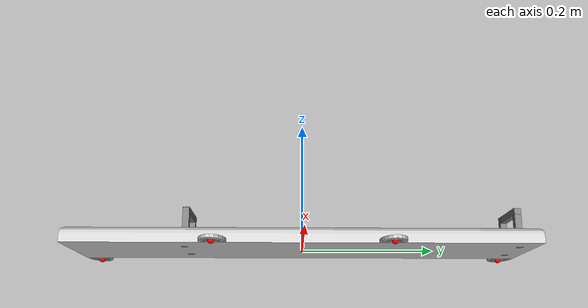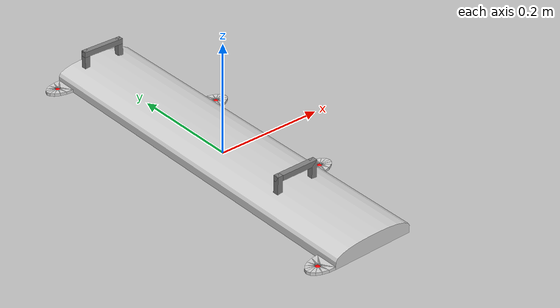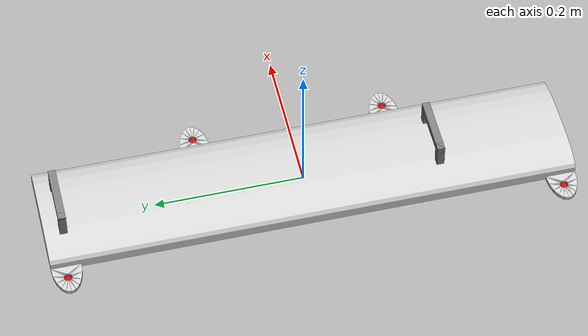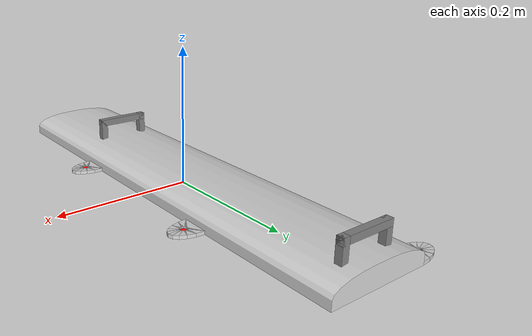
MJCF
<mujoco model="bracket">
    <asset>
        <mesh name="quad_base"           file="quad_base.stl" />
        <mesh name="quad_handle"         file="handle.stl" />
        <mesh name="grommet_11mm_01"     file="../dual_pegs/hole_11_01.stl" />
        <mesh name="grommet_11mm_02"     file="../dual_pegs/hole_11_02.stl" />
        <mesh name="grommet_11mm_03"     file="../dual_pegs/hole_11_03.stl" />
        <mesh name="grommet_11mm_04"     file="../dual_pegs/hole_11_04.stl" />
        <mesh name="grommet_11mm_05"     file="../dual_pegs/hole_11_05.stl" />
        <mesh name="grommet_11mm_06"     file="../dual_pegs/hole_11_06.stl" />
        <mesh name="grommet_11mm_07"     file="../dual_pegs/hole_11_07.stl" />
        <mesh name="grommet_11mm_08"     file="../dual_pegs/hole_11_08.stl" />
        <mesh name="grommet_11mm_09"     file="../dual_pegs/hole_11_09.stl" />
        <mesh name="grommet_11mm_10"     file="../dual_pegs/hole_11_10.stl" />
        <mesh name="grommet_11mm_11"     file="../dual_pegs/hole_11_11.stl" />
        <mesh name="grommet_11mm_12"     file="../dual_pegs/hole_11_12.stl" />
        <mesh name="grommet_11mm_13"     file="../dual_pegs/hole_11_13.stl" />
        <mesh name="grommet_11mm_14"     file="../dual_pegs/hole_11_14.stl" />
        <mesh name="grommet_11mm_15"     file="../dual_pegs/hole_11_15.stl" />
        <mesh name="grommet_11mm_16"     file="../dual_pegs/hole_11_16.stl" />
        <mesh name="grommet_11mm_17"     file="../dual_pegs/hole_11_17.stl" />
        <mesh name="grommet_11mm_18"     file="../dual_pegs/hole_11_18.stl" />
        <mesh name="grommet_11mm_19"     file="../dual_pegs/hole_11_19.stl" />
        <mesh name="grommet_11mm_20"     file="../dual_pegs/hole_11_20.stl" />
        <mesh name="grommet_11mm_21"     file="../dual_pegs/hole_11_21.stl" />
        <mesh name="grommet_11mm_22"     file="../dual_pegs/hole_11_22.stl" />
        <mesh name="grommet_11mm_23"     file="../dual_pegs/hole_11_23.stl" />
        <mesh name="grommet_11mm_24"     file="../dual_pegs/hole_11_24.stl" />
        <mesh name="grommet_11mm_25"     file="../dual_pegs/hole_11_25.stl" />
        <mesh name="grommet_11mm_26"     file="../dual_pegs/hole_11_26.stl" />
        <mesh name="grommet_11mm_27"     file="../dual_pegs/hole_11_27.stl" />
        <mesh name="grommet_11mm_28"     file="../dual_pegs/hole_11_28.stl" />
        <mesh name="grommet_11mm_29"     file="../dual_pegs/hole_11_29.stl" />
        <mesh name="grommet_11mm_30"     file="../dual_pegs/hole_11_30.stl" />
        <mesh name="grommet_11mm_31"     file="../dual_pegs/hole_11_31.stl" />
        <mesh name="grommet_11mm_32"     file="../dual_pegs/hole_11_32.stl" />
        <mesh name="grommet_11mm_33"     file="../dual_pegs/hole_11_33.stl" />

        <material name="silver" specular="1" shininess="0.5" reflectance="1" emission="0.25" rgba="0.82 0.82 0.82 1"/>
        <material name="dark_silver" specular="1" shininess="0.5" reflectance="1" emission="0.25" rgba="0.5 0.5 0.5 1"/>
    </asset>

    <worldbody>
        <body>
            <body name="object">
                <inertial pos="0 0 0" mass="0.1" diaginertia="0.005 0.005 0.005"/>
                <geom name="quad_base" type="mesh" mesh="quad_base" pos="0 0 0"
                      material="silver" conaffinity="1" contype="1" mass="0.025" solimp="0.99 0.99 0.01"
                      solref="0.01 1" condim="4" friction="0.9 0.9 10"
                      group="0"/>

                <site rgba="1 0 0 1" size="0.003" pos="0 0 0" name="center_site"/>

                <!--size="0.04 0.005 0.005" pos="0 -0.175 0.055"-->
                <!--size="0.04 0.005 0.03" pos="0 -0.175 0.03"-->
                <geom name="handle0_a" type="box" material="dark_silver"
                      size="0.04 0.005 0.005" pos="0 -0.175 0.055"
                      conaffinity="1" contype="1" mass="0.025"
                      solimp="0.998 0.998 0.001" solref="0.02 1" density="100" friction="0.95 0.3 0.1" group="0" condim="4"/>
                <site rgba="1 0 0 1" size="0.005" pos="0 -0.175 0.055" name="handle0_site"/>
                <geom name="handle0_b" type="box" material="dark_silver"
                      size="0.005 0.005 0.03" pos="0.035 -0.175 0.03"
                      conaffinity="1" contype="1" mass="0.025"
                      solimp="0.998 0.998 0.001" solref="0.02 1" density="100" friction="0.95 0.3 0.1" group="0" condim="4"/>
                <geom name="handle0_c" type="box" material="dark_silver"
                      size="0.005 0.005 0.03" pos="-0.035 -0.175 0.03"
                      conaffinity="1" contype="1" mass="0.025"
                      solimp="0.998 0.998 0.001" solref="0.02 1" density="100" friction="0.95 0.3 0.1" group="0" condim="4"/>

                <!--size="0.04 0.005 0.005" pos="0 -0.175 0.055"-->
                <!--size="0.04 0.005 0.03" pos="0 0.325 0.03"-->
                <geom name="handle1_a" type="box" material="dark_silver"
                      size="0.04 0.005 0.005" pos="0 0.325 0.055"
                      conaffinity="1" contype="1" mass="0.025"
                      solimp="0.998 0.998 0.001" solref="0.02 1" density="100" friction="0.95 0.3 0.1" group="0" condim="4"/>
                <site rgba="1 0 0 1" size="0.005" pos="0 0.325 0.055" name="handle1_site"/>
                <geom name="handle1_b" type="box" material="dark_silver"
                      size="0.005 0.005 0.03" pos="0.035 0.325 0.03"
                      conaffinity="1" contype="1" mass="0.025"
                      solimp="0.998 0.998 0.001" solref="0.02 1" density="100" friction="0.95 0.3 0.1" group="0" condim="4"/>
                <geom name="handle1_c" type="box" material="dark_silver"
                      size="0.005 0.005 0.03" pos="-0.035 0.325 0.03"
                      conaffinity="1" contype="1" mass="0.025"
                      solimp="0.998 0.998 0.001" solref="0.02 1" density="100" friction="0.95 0.3 0.1" group="0" condim="4"/>

                <body name="handle_11mm_flap_a" pos="0.0 0.13 0.005" quat="0 0 0.707108 0">
                    <geom name="grommet_11mm_01_a" type="mesh" mesh="grommet_11mm_01" pos="0 0 0" material="silver" conaffinity="1" contype="1" mass="0.0001" group="0"/>
                    <geom name="grommet_11mm_02_a" type="mesh" mesh="grommet_11mm_02" pos="0 0 0" material="silver" conaffinity="1" contype="1" mass="0.0001" group="0"/>
                    <geom name="grommet_11mm_03_a" type="mesh" mesh="grommet_11mm_03" pos="0 0 0" material="silver" conaffinity="1" contype="1" mass="0.0001" group="0"/>
                    <geom name="grommet_11mm_04_a" type="mesh" mesh="grommet_11mm_04" pos="0 0 0" material="silver" conaffinity="1" contype="1" mass="0.0001" group="0"/>
                    <geom name="grommet_11mm_05_a" type="mesh" mesh="grommet_11mm_05" pos="0 0 0" material="silver" conaffinity="1" contype="1" mass="0.0001" group="0"/>
                    <geom name="grommet_11mm_06_a" type="mesh" mesh="grommet_11mm_06" pos="0 0 0" material="silver" conaffinity="1" contype="1" mass="0.0001" group="0"/>
                    <geom name="grommet_11mm_07_a" type="mesh" mesh="grommet_11mm_07" pos="0 0 0" material="silver" conaffinity="1" contype="1" mass="0.0001" group="0"/>
                    <geom name="grommet_11mm_08_a" type="mesh" mesh="grommet_11mm_08" pos="0 0 0" material="silver" conaffinity="1" contype="1" mass="0.0001" group="0"/>
                    <geom name="grommet_11mm_09_a" type="mesh" mesh="grommet_11mm_09" pos="0 0 0" material="silver" conaffinity="1" contype="1" mass="0.0001" group="0"/>
                    <geom name="grommet_11mm_10_a" type="mesh" mesh="grommet_11mm_10" pos="0 0 0" material="silver" conaffinity="1" contype="1" mass="0.0001" group="0"/>
                    <geom name="grommet_11mm_11_a" type="mesh" mesh="grommet_11mm_11" pos="0 0 0" material="silver" conaffinity="1" contype="1" mass="0.0001" group="0"/>
                    <geom name="grommet_11mm_12_a" type="mesh" mesh="grommet_11mm_12" pos="0 0 0" material="silver" conaffinity="1" contype="1" mass="0.0001" group="0"/>
                    <geom name="grommet_11mm_13_a" type="mesh" mesh="grommet_11mm_13" pos="0 0 0" material="silver" conaffinity="1" contype="1" mass="0.0001" group="0"/>
                    <geom name="grommet_11mm_14_a" type="mesh" mesh="grommet_11mm_14" pos="0 0 0" material="silver" conaffinity="1" contype="1" mass="0.0001" group="0"/>
                    <geom name="grommet_11mm_15_a" type="mesh" mesh="grommet_11mm_15" pos="0 0 0" material="silver" conaffinity="1" contype="1" mass="0.0001" group="0"/>
                    <geom name="grommet_11mm_16_a" type="mesh" mesh="grommet_11mm_16" pos="0 0 0" material="silver" conaffinity="1" contype="1" mass="0.0001" group="0"/>
                    <geom name="grommet_11mm_17_a" type="mesh" mesh="grommet_11mm_17" pos="0 0 0" material="silver" conaffinity="1" contype="1" mass="0.0001" group="0"/>
                    <geom name="grommet_11mm_18_a" type="mesh" mesh="grommet_11mm_18" pos="0 0 0" material="silver" conaffinity="1" contype="1" mass="0.0001" group="0"/>
                    <geom name="grommet_11mm_19_a" type="mesh" mesh="grommet_11mm_19" pos="0 0 0" material="silver" conaffinity="1" contype="1" mass="0.0001" group="0"/>
                    <geom name="grommet_11mm_20_a" type="mesh" mesh="grommet_11mm_20" pos="0 0 0" material="silver" conaffinity="1" contype="1" mass="0.0001" group="0"/>
                    <geom name="grommet_11mm_21_a" type="mesh" mesh="grommet_11mm_21" pos="0 0 0" material="silver" conaffinity="1" contype="1" mass="0.0001" group="0"/>
                    <geom name="grommet_11mm_22_a" type="mesh" mesh="grommet_11mm_22" pos="0 0 0" material="silver" conaffinity="1" contype="1" mass="0.0001" group="0"/>
                    <geom name="grommet_11mm_23_a" type="mesh" mesh="grommet_11mm_23" pos="0 0 0" material="silver" conaffinity="1" contype="1" mass="0.0001" group="0"/>
                    <geom name="grommet_11mm_24_a" type="mesh" mesh="grommet_11mm_24" pos="0 0 0" material="silver" conaffinity="1" contype="1" mass="0.0001" group="0"/>
                    <geom name="grommet_11mm_25_a" type="mesh" mesh="grommet_11mm_25" pos="0 0 0" material="silver" conaffinity="1" contype="1" mass="0.0001" group="0"/>
                    <geom name="grommet_11mm_26_a" type="mesh" mesh="grommet_11mm_26" pos="0 0 0" material="silver" conaffinity="1" contype="1" mass="0.0001" group="0"/>
                    <geom name="grommet_11mm_27_a" type="mesh" mesh="grommet_11mm_27" pos="0 0 0" material="silver" conaffinity="1" contype="1" mass="0.0001" group="0"/>
                    <geom name="grommet_11mm_28_a" type="mesh" mesh="grommet_11mm_28" pos="0 0 0" material="silver" conaffinity="1" contype="1" mass="0.0001" group="0"/>
                    <geom name="grommet_11mm_29_a" type="mesh" mesh="grommet_11mm_29" pos="0 0 0" material="silver" conaffinity="1" contype="1" mass="0.0001" group="0"/>
                    <geom name="grommet_11mm_30_a" type="mesh" mesh="grommet_11mm_30" pos="0 0 0" material="silver" conaffinity="1" contype="1" mass="0.0001" group="0"/>
                    <geom name="grommet_11mm_31_a" type="mesh" mesh="grommet_11mm_31" pos="0 0 0" material="silver" conaffinity="1" contype="1" mass="0.0001" group="0"/>
                    <geom name="grommet_11mm_32_a" type="mesh" mesh="grommet_11mm_32" pos="0 0 0" material="silver" conaffinity="1" contype="1" mass="0.0001" group="0"/>
                    <geom name="grommet_11mm_33_a" type="mesh" mesh="grommet_11mm_33" pos="0 0 0" material="silver" conaffinity="1" contype="1" mass="0.0001" group="0"/>
                </body>

                <body name="handle_11mm_flap_b" pos="0.0 -0.13 0.005" quat="0 0 0.707108 0">
                    <geom name="grommet_11mm_01_b" type="mesh" mesh="grommet_11mm_01" pos="0 0 0" material="silver" conaffinity="1" contype="1" mass="0.0001" group="0"/>
                    <geom name="grommet_11mm_02_b" type="mesh" mesh="grommet_11mm_02" pos="0 0 0" material="silver" conaffinity="1" contype="1" mass="0.0001" group="0"/>
                    <geom name="grommet_11mm_03_b" type="mesh" mesh="grommet_11mm_03" pos="0 0 0" material="silver" conaffinity="1" contype="1" mass="0.0001" group="0"/>
                    <geom name="grommet_11mm_04_b" type="mesh" mesh="grommet_11mm_04" pos="0 0 0" material="silver" conaffinity="1" contype="1" mass="0.0001" group="0"/>
                    <geom name="grommet_11mm_05_b" type="mesh" mesh="grommet_11mm_05" pos="0 0 0" material="silver" conaffinity="1" contype="1" mass="0.0001" group="0"/>
                    <geom name="grommet_11mm_06_b" type="mesh" mesh="grommet_11mm_06" pos="0 0 0" material="silver" conaffinity="1" contype="1" mass="0.0001" group="0"/>
                    <geom name="grommet_11mm_07_b" type="mesh" mesh="grommet_11mm_07" pos="0 0 0" material="silver" conaffinity="1" contype="1" mass="0.0001" group="0"/>
                    <geom name="grommet_11mm_08_b" type="mesh" mesh="grommet_11mm_08" pos="0 0 0" material="silver" conaffinity="1" contype="1" mass="0.0001" group="0"/>
                    <geom name="grommet_11mm_09_b" type="mesh" mesh="grommet_11mm_09" pos="0 0 0" material="silver" conaffinity="1" contype="1" mass="0.0001" group="0"/>
                    <geom name="grommet_11mm_10_b" type="mesh" mesh="grommet_11mm_10" pos="0 0 0" material="silver" conaffinity="1" contype="1" mass="0.0001" group="0"/>
                    <geom name="grommet_11mm_11_b" type="mesh" mesh="grommet_11mm_11" pos="0 0 0" material="silver" conaffinity="1" contype="1" mass="0.0001" group="0"/>
                    <geom name="grommet_11mm_12_b" type="mesh" mesh="grommet_11mm_12" pos="0 0 0" material="silver" conaffinity="1" contype="1" mass="0.0001" group="0"/>
                    <geom name="grommet_11mm_13_b" type="mesh" mesh="grommet_11mm_13" pos="0 0 0" material="silver" conaffinity="1" contype="1" mass="0.0001" group="0"/>
                    <geom name="grommet_11mm_14_b" type="mesh" mesh="grommet_11mm_14" pos="0 0 0" material="silver" conaffinity="1" contype="1" mass="0.0001" group="0"/>
                    <geom name="grommet_11mm_15_b" type="mesh" mesh="grommet_11mm_15" pos="0 0 0" material="silver" conaffinity="1" contype="1" mass="0.0001" group="0"/>
                    <geom name="grommet_11mm_16_b" type="mesh" mesh="grommet_11mm_16" pos="0 0 0" material="silver" conaffinity="1" contype="1" mass="0.0001" group="0"/>
                    <geom name="grommet_11mm_17_b" type="mesh" mesh="grommet_11mm_17" pos="0 0 0" material="silver" conaffinity="1" contype="1" mass="0.0001" group="0"/>
                    <geom name="grommet_11mm_18_b" type="mesh" mesh="grommet_11mm_18" pos="0 0 0" material="silver" conaffinity="1" contype="1" mass="0.0001" group="0"/>
                    <geom name="grommet_11mm_19_b" type="mesh" mesh="grommet_11mm_19" pos="0 0 0" material="silver" conaffinity="1" contype="1" mass="0.0001" group="0"/>
                    <geom name="grommet_11mm_20_b" type="mesh" mesh="grommet_11mm_20" pos="0 0 0" material="silver" conaffinity="1" contype="1" mass="0.0001" group="0"/>
                    <geom name="grommet_11mm_21_b" type="mesh" mesh="grommet_11mm_21" pos="0 0 0" material="silver" conaffinity="1" contype="1" mass="0.0001" group="0"/>
                    <geom name="grommet_11mm_22_b" type="mesh" mesh="grommet_11mm_22" pos="0 0 0" material="silver" conaffinity="1" contype="1" mass="0.0001" group="0"/>
                    <geom name="grommet_11mm_23_b" type="mesh" mesh="grommet_11mm_23" pos="0 0 0" material="silver" conaffinity="1" contype="1" mass="0.0001" group="0"/>
                    <geom name="grommet_11mm_24_b" type="mesh" mesh="grommet_11mm_24" pos="0 0 0" material="silver" conaffinity="1" contype="1" mass="0.0001" group="0"/>
                    <geom name="grommet_11mm_25_b" type="mesh" mesh="grommet_11mm_25" pos="0 0 0" material="silver" conaffinity="1" contype="1" mass="0.0001" group="0"/>
                    <geom name="grommet_11mm_26_b" type="mesh" mesh="grommet_11mm_26" pos="0 0 0" material="silver" conaffinity="1" contype="1" mass="0.0001" group="0"/>
                    <geom name="grommet_11mm_27_b" type="mesh" mesh="grommet_11mm_27" pos="0 0 0" material="silver" conaffinity="1" contype="1" mass="0.0001" group="0"/>
                    <geom name="grommet_11mm_28_b" type="mesh" mesh="grommet_11mm_28" pos="0 0 0" material="silver" conaffinity="1" contype="1" mass="0.0001" group="0"/>
                    <geom name="grommet_11mm_29_b" type="mesh" mesh="grommet_11mm_29" pos="0 0 0" material="silver" conaffinity="1" contype="1" mass="0.0001" group="0"/>
                    <geom name="grommet_11mm_30_b" type="mesh" mesh="grommet_11mm_30" pos="0 0 0" material="silver" conaffinity="1" contype="1" mass="0.0001" group="0"/>
                    <geom name="grommet_11mm_31_b" type="mesh" mesh="grommet_11mm_31" pos="0 0 0" material="silver" conaffinity="1" contype="1" mass="0.0001" group="0"/>
                    <geom name="grommet_11mm_32_b" type="mesh" mesh="grommet_11mm_32" pos="0 0 0" material="silver" conaffinity="1" contype="1" mass="0.0001" group="0"/>
                    <geom name="grommet_11mm_33_b" type="mesh" mesh="grommet_11mm_33" pos="0 0 0" material="silver" conaffinity="1" contype="1" mass="0.0001" group="0"/>
                </body>

                <body name="handle_11mm_flap_c" pos="0.0 0.33 0.00">
                    <geom name="grommet_11mm_01_c" type="mesh" mesh="grommet_11mm_01" pos="0 0 0" material="silver" conaffinity="1" contype="1" mass="0.0001" group="0"/>
                    <geom name="grommet_11mm_02_c" type="mesh" mesh="grommet_11mm_02" pos="0 0 0" material="silver" conaffinity="1" contype="1" mass="0.0001" group="0"/>
                    <geom name="grommet_11mm_03_c" type="mesh" mesh="grommet_11mm_03" pos="0 0 0" material="silver" conaffinity="1" contype="1" mass="0.0001" group="0"/>
                    <geom name="grommet_11mm_04_c" type="mesh" mesh="grommet_11mm_04" pos="0 0 0" material="silver" conaffinity="1" contype="1" mass="0.0001" group="0"/>
                    <geom name="grommet_11mm_05_c" type="mesh" mesh="grommet_11mm_05" pos="0 0 0" material="silver" conaffinity="1" contype="1" mass="0.0001" group="0"/>
                    <geom name="grommet_11mm_06_c" type="mesh" mesh="grommet_11mm_06" pos="0 0 0" material="silver" conaffinity="1" contype="1" mass="0.0001" group="0"/>
                    <geom name="grommet_11mm_07_c" type="mesh" mesh="grommet_11mm_07" pos="0 0 0" material="silver" conaffinity="1" contype="1" mass="0.0001" group="0"/>
                    <geom name="grommet_11mm_08_c" type="mesh" mesh="grommet_11mm_08" pos="0 0 0" material="silver" conaffinity="1" contype="1" mass="0.0001" group="0"/>
                    <geom name="grommet_11mm_09_c" type="mesh" mesh="grommet_11mm_09" pos="0 0 0" material="silver" conaffinity="1" contype="1" mass="0.0001" group="0"/>
                    <geom name="grommet_11mm_10_c" type="mesh" mesh="grommet_11mm_10" pos="0 0 0" material="silver" conaffinity="1" contype="1" mass="0.0001" group="0"/>
                    <geom name="grommet_11mm_11_c" type="mesh" mesh="grommet_11mm_11" pos="0 0 0" material="silver" conaffinity="1" contype="1" mass="0.0001" group="0"/>
                    <geom name="grommet_11mm_12_c" type="mesh" mesh="grommet_11mm_12" pos="0 0 0" material="silver" conaffinity="1" contype="1" mass="0.0001" group="0"/>
                    <geom name="grommet_11mm_13_c" type="mesh" mesh="grommet_11mm_13" pos="0 0 0" material="silver" conaffinity="1" contype="1" mass="0.0001" group="0"/>
                    <geom name="grommet_11mm_14_c" type="mesh" mesh="grommet_11mm_14" pos="0 0 0" material="silver" conaffinity="1" contype="1" mass="0.0001" group="0"/>
                    <geom name="grommet_11mm_15_c" type="mesh" mesh="grommet_11mm_15" pos="0 0 0" material="silver" conaffinity="1" contype="1" mass="0.0001" group="0"/>
                    <geom name="grommet_11mm_16_c" type="mesh" mesh="grommet_11mm_16" pos="0 0 0" material="silver" conaffinity="1" contype="1" mass="0.0001" group="0"/>
                    <geom name="grommet_11mm_17_c" type="mesh" mesh="grommet_11mm_17" pos="0 0 0" material="silver" conaffinity="1" contype="1" mass="0.0001" group="0"/>
                    <geom name="grommet_11mm_18_c" type="mesh" mesh="grommet_11mm_18" pos="0 0 0" material="silver" conaffinity="1" contype="1" mass="0.0001" group="0"/>
                    <geom name="grommet_11mm_19_c" type="mesh" mesh="grommet_11mm_19" pos="0 0 0" material="silver" conaffinity="1" contype="1" mass="0.0001" group="0"/>
                    <geom name="grommet_11mm_20_c" type="mesh" mesh="grommet_11mm_20" pos="0 0 0" material="silver" conaffinity="1" contype="1" mass="0.0001" group="0"/>
                    <geom name="grommet_11mm_21_c" type="mesh" mesh="grommet_11mm_21" pos="0 0 0" material="silver" conaffinity="1" contype="1" mass="0.0001" group="0"/>
                    <geom name="grommet_11mm_22_c" type="mesh" mesh="grommet_11mm_22" pos="0 0 0" material="silver" conaffinity="1" contype="1" mass="0.0001" group="0"/>
                    <geom name="grommet_11mm_23_c" type="mesh" mesh="grommet_11mm_23" pos="0 0 0" material="silver" conaffinity="1" contype="1" mass="0.0001" group="0"/>
                    <geom name="grommet_11mm_24_c" type="mesh" mesh="grommet_11mm_24" pos="0 0 0" material="silver" conaffinity="1" contype="1" mass="0.0001" group="0"/>
                    <geom name="grommet_11mm_25_c" type="mesh" mesh="grommet_11mm_25" pos="0 0 0" material="silver" conaffinity="1" contype="1" mass="0.0001" group="0"/>
                    <geom name="grommet_11mm_26_c" type="mesh" mesh="grommet_11mm_26" pos="0 0 0" material="silver" conaffinity="1" contype="1" mass="0.0001" group="0"/>
                    <geom name="grommet_11mm_27_c" type="mesh" mesh="grommet_11mm_27" pos="0 0 0" material="silver" conaffinity="1" contype="1" mass="0.0001" group="0"/>
                    <geom name="grommet_11mm_28_c" type="mesh" mesh="grommet_11mm_28" pos="0 0 0" material="silver" conaffinity="1" contype="1" mass="0.0001" group="0"/>
                    <geom name="grommet_11mm_29_c" type="mesh" mesh="grommet_11mm_29" pos="0 0 0" material="silver" conaffinity="1" contype="1" mass="0.0001" group="0"/>
                    <geom name="grommet_11mm_30_c" type="mesh" mesh="grommet_11mm_30" pos="0 0 0" material="silver" conaffinity="1" contype="1" mass="0.0001" group="0"/>
                    <geom name="grommet_11mm_31_c" type="mesh" mesh="grommet_11mm_31" pos="0 0 0" material="silver" conaffinity="1" contype="1" mass="0.0001" group="0"/>
                    <geom name="grommet_11mm_32_c" type="mesh" mesh="grommet_11mm_32" pos="0 0 0" material="silver" conaffinity="1" contype="1" mass="0.0001" group="0"/>
                    <geom name="grommet_11mm_33_c" type="mesh" mesh="grommet_11mm_33" pos="0 0 0" material="silver" conaffinity="1" contype="1" mass="0.0001" group="0"/>
                </body>

                <body name="handle_11mm_flap_d" pos="0.0 -0.33 0.00">
                    <geom name="grommet_11mm_01_d" type="mesh" mesh="grommet_11mm_01" pos="0 0 0" material="silver" conaffinity="1" contype="1" mass="0.0001" group="0"/>
                    <geom name="grommet_11mm_02_d" type="mesh" mesh="grommet_11mm_02" pos="0 0 0" material="silver" conaffinity="1" contype="1" mass="0.0001" group="0"/>
                    <geom name="grommet_11mm_03_d" type="mesh" mesh="grommet_11mm_03" pos="0 0 0" material="silver" conaffinity="1" contype="1" mass="0.0001" group="0"/>
                    <geom name="grommet_11mm_04_d" type="mesh" mesh="grommet_11mm_04" pos="0 0 0" material="silver" conaffinity="1" contype="1" mass="0.0001" group="0"/>
                    <geom name="grommet_11mm_05_d" type="mesh" mesh="grommet_11mm_05" pos="0 0 0" material="silver" conaffinity="1" contype="1" mass="0.0001" group="0"/>
                    <geom name="grommet_11mm_06_d" type="mesh" mesh="grommet_11mm_06" pos="0 0 0" material="silver" conaffinity="1" contype="1" mass="0.0001" group="0"/>
                    <geom name="grommet_11mm_07_d" type="mesh" mesh="grommet_11mm_07" pos="0 0 0" material="silver" conaffinity="1" contype="1" mass="0.0001" group="0"/>
                    <geom name="grommet_11mm_08_d" type="mesh" mesh="grommet_11mm_08" pos="0 0 0" material="silver" conaffinity="1" contype="1" mass="0.0001" group="0"/>
                    <geom name="grommet_11mm_09_d" type="mesh" mesh="grommet_11mm_09" pos="0 0 0" material="silver" conaffinity="1" contype="1" mass="0.0001" group="0"/>
                    <geom name="grommet_11mm_10_d" type="mesh" mesh="grommet_11mm_10" pos="0 0 0" material="silver" conaffinity="1" contype="1" mass="0.0001" group="0"/>
                    <geom name="grommet_11mm_11_d" type="mesh" mesh="grommet_11mm_11" pos="0 0 0" material="silver" conaffinity="1" contype="1" mass="0.0001" group="0"/>
                    <geom name="grommet_11mm_12_d" type="mesh" mesh="grommet_11mm_12" pos="0 0 0" material="silver" conaffinity="1" contype="1" mass="0.0001" group="0"/>
                    <geom name="grommet_11mm_13_d" type="mesh" mesh="grommet_11mm_13" pos="0 0 0" material="silver" conaffinity="1" contype="1" mass="0.0001" group="0"/>
                    <geom name="grommet_11mm_14_d" type="mesh" mesh="grommet_11mm_14" pos="0 0 0" material="silver" conaffinity="1" contype="1" mass="0.0001" group="0"/>
                    <geom name="grommet_11mm_15_d" type="mesh" mesh="grommet_11mm_15" pos="0 0 0" material="silver" conaffinity="1" contype="1" mass="0.0001" group="0"/>
                    <geom name="grommet_11mm_16_d" type="mesh" mesh="grommet_11mm_16" pos="0 0 0" material="silver" conaffinity="1" contype="1" mass="0.0001" group="0"/>
                    <geom name="grommet_11mm_17_d" type="mesh" mesh="grommet_11mm_17" pos="0 0 0" material="silver" conaffinity="1" contype="1" mass="0.0001" group="0"/>
                    <geom name="grommet_11mm_18_d" type="mesh" mesh="grommet_11mm_18" pos="0 0 0" material="silver" conaffinity="1" contype="1" mass="0.0001" group="0"/>
                    <geom name="grommet_11mm_19_d" type="mesh" mesh="grommet_11mm_19" pos="0 0 0" material="silver" conaffinity="1" contype="1" mass="0.0001" group="0"/>
                    <geom name="grommet_11mm_20_d" type="mesh" mesh="grommet_11mm_20" pos="0 0 0" material="silver" conaffinity="1" contype="1" mass="0.0001" group="0"/>
                    <geom name="grommet_11mm_21_d" type="mesh" mesh="grommet_11mm_21" pos="0 0 0" material="silver" conaffinity="1" contype="1" mass="0.0001" group="0"/>
                    <geom name="grommet_11mm_22_d" type="mesh" mesh="grommet_11mm_22" pos="0 0 0" material="silver" conaffinity="1" contype="1" mass="0.0001" group="0"/>
                    <geom name="grommet_11mm_23_d" type="mesh" mesh="grommet_11mm_23" pos="0 0 0" material="silver" conaffinity="1" contype="1" mass="0.0001" group="0"/>
                    <geom name="grommet_11mm_24_d" type="mesh" mesh="grommet_11mm_24" pos="0 0 0" material="silver" conaffinity="1" contype="1" mass="0.0001" group="0"/>
                    <geom name="grommet_11mm_25_d" type="mesh" mesh="grommet_11mm_25" pos="0 0 0" material="silver" conaffinity="1" contype="1" mass="0.0001" group="0"/>
                    <geom name="grommet_11mm_26_d" type="mesh" mesh="grommet_11mm_26" pos="0 0 0" material="silver" conaffinity="1" contype="1" mass="0.0001" group="0"/>
                    <geom name="grommet_11mm_27_d" type="mesh" mesh="grommet_11mm_27" pos="0 0 0" material="silver" conaffinity="1" contype="1" mass="0.0001" group="0"/>
                    <geom name="grommet_11mm_28_d" type="mesh" mesh="grommet_11mm_28" pos="0 0 0" material="silver" conaffinity="1" contype="1" mass="0.0001" group="0"/>
                    <geom name="grommet_11mm_29_d" type="mesh" mesh="grommet_11mm_29" pos="0 0 0" material="silver" conaffinity="1" contype="1" mass="0.0001" group="0"/>
                    <geom name="grommet_11mm_30_d" type="mesh" mesh="grommet_11mm_30" pos="0 0 0" material="silver" conaffinity="1" contype="1" mass="0.0001" group="0"/>
                    <geom name="grommet_11mm_31_d" type="mesh" mesh="grommet_11mm_31" pos="0 0 0" material="silver" conaffinity="1" contype="1" mass="0.0001" group="0"/>
                    <geom name="grommet_11mm_32_d" type="mesh" mesh="grommet_11mm_32" pos="0 0 0" material="silver" conaffinity="1" contype="1" mass="0.0001" group="0"/>
                    <geom name="grommet_11mm_33_d" type="mesh" mesh="grommet_11mm_33" pos="0 0 0" material="silver" conaffinity="1" contype="1" mass="0.0001" group="0"/>
                </body>

                <site rgba="1 0 0 1" size="0.005" pos="0.0925 0.13 0.0" name="flap_a_hole_site"/>
                <site rgba="1 0 0 1" size="0.005" pos="0.0925 -0.13 0.0" name="flap_b_hole_site"/>
                <site rgba="1 0 0 1" size="0.005" pos="-0.0925 0.33 0.0" name="flap_c_hole_site"/>
                <site rgba="1 0 0 1" size="0.005" pos="-0.0925 -0.33 0.0" name="flap_d_hole_site"/>
            </body>
            <site rgba="0 0 0 0" size="0.005" pos="0 0 0" name="bottom_site"/>
            <site rgba="0 0 0 0" size="0.005" pos="0 0 0.06" name="top_site"/>
            <site rgba="0 0 0 0" size="0.005" pos="0.37 0 0" name="horizontal_radius_site"/>
        </body>
    </worldbody>
</mujoco>
